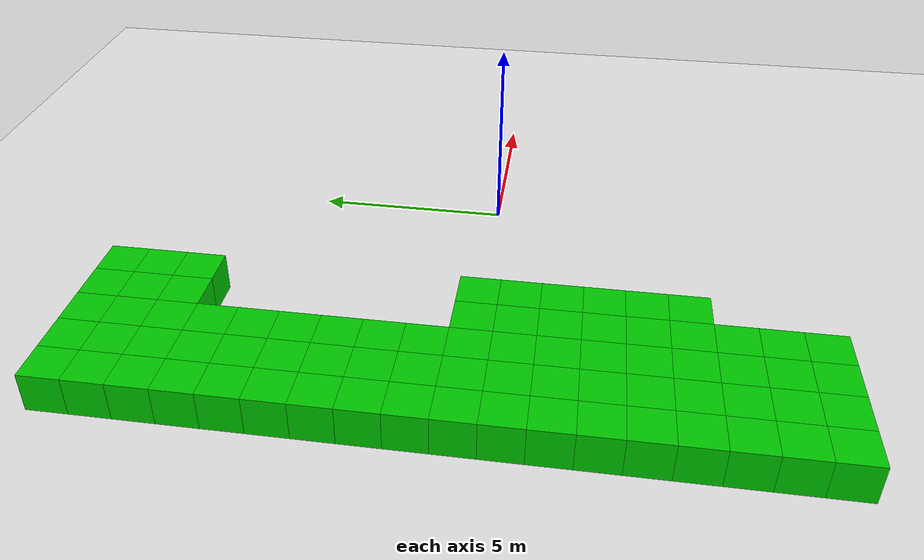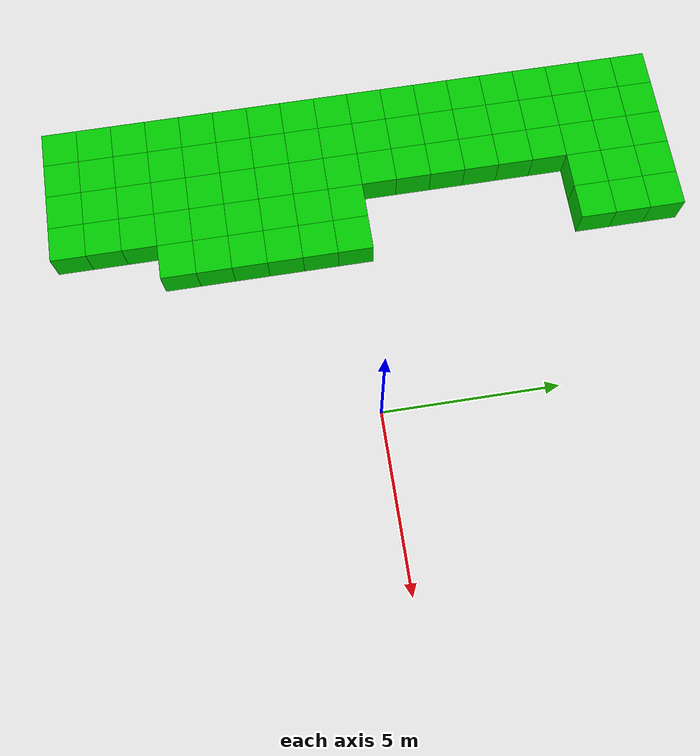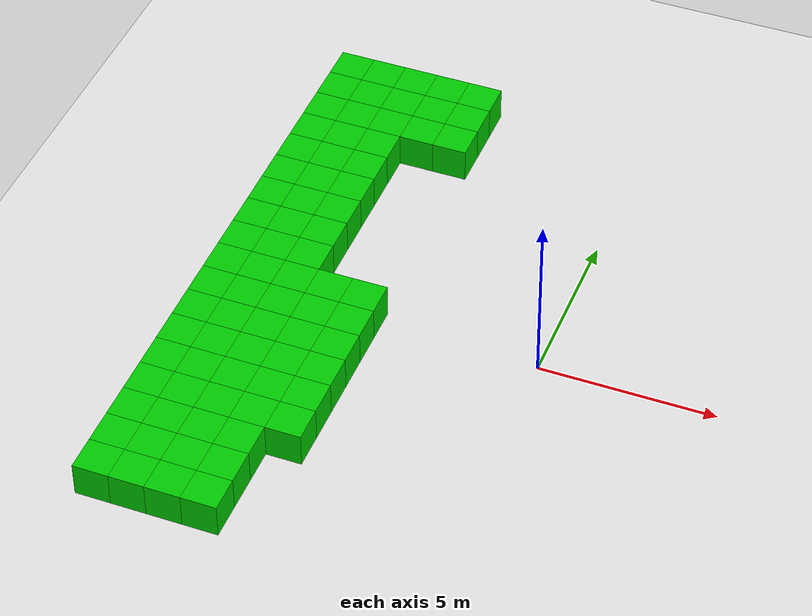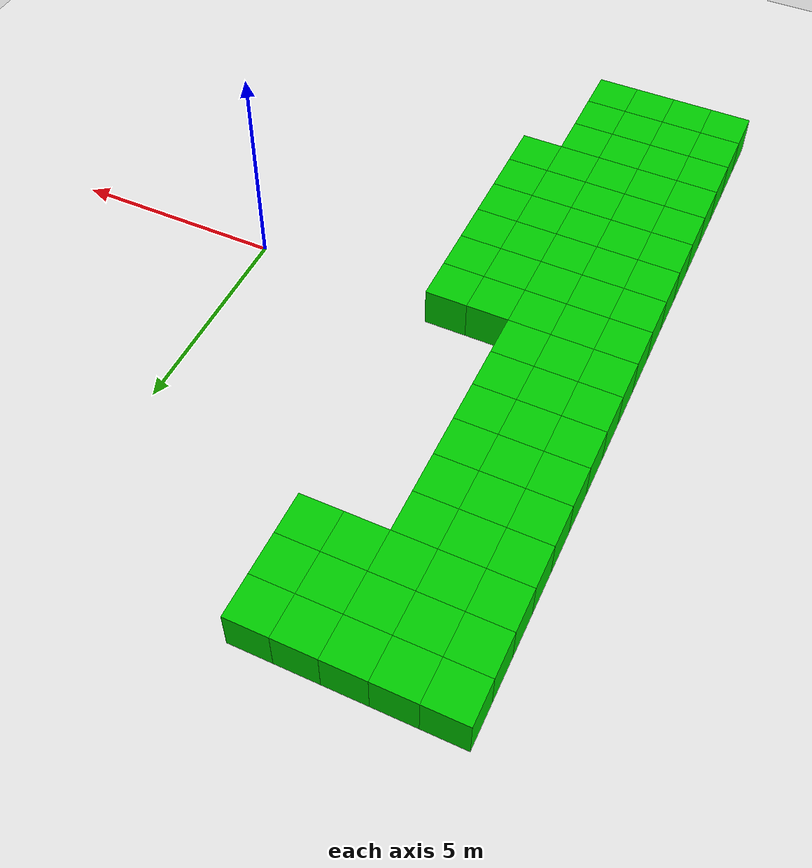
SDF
<sdf version="1.6">
 <world name="generated_maze">
  <model name="ground_plane">
   <static>true</static>
   <link name="link">
    <collision name="collision">
     <geometry><plane><normal>0 0 1</normal><size>100 100</size></plane></geometry>
    </collision>
    <visual name="visual">
     <geometry><plane><normal>0 0 1</normal><size>100 100</size></plane></geometry>
     <material>
      <ambient>0.9 0.9 0.9 1</ambient>
      <diffuse>0.9 0.9 0.9 1</diffuse>
      <specular>0.3 0.3 0.3 1</specular>
     </material>
    </visual>
   </link>
  </model>
  <model name="wall_0_0">
   <static>true</static>
   <pose>-9 9 0.5 0 0 0</pose>
   <link name="link">
    <collision name="collision"><geometry><box><size>1 1 1</size></box></geometry></collision>
    <visual name="visual">
     <geometry><box><size>1 1 1</size></box></geometry>
     <material>
      <ambient>0.0 0.8 0.0 1</ambient>
      <diffuse>0.0 0.8 0.0 1</diffuse>
      <specular>0.1 0.1 0.1 1</specular>
     </material>
    </visual>
   </link>
  </model>
  <model name="wall_0_1">
   <static>true</static>
   <pose>-8 9 0.5 0 0 0</pose>
   <link name="link">
    <collision name="collision"><geometry><box><size>1 1 1</size></box></geometry></collision>
    <visual name="visual">
     <geometry><box><size>1 1 1</size></box></geometry>
     <material>
      <ambient>0.0 0.8 0.0 1</ambient>
      <diffuse>0.0 0.8 0.0 1</diffuse>
      <specular>0.1 0.1 0.1 1</specular>
     </material>
    </visual>
   </link>
  </model>
  <model name="wall_0_2">
   <static>true</static>
   <pose>-7 9 0.5 0 0 0</pose>
   <link name="link">
    <collision name="collision"><geometry><box><size>1 1 1</size></box></geometry></collision>
    <visual name="visual">
     <geometry><box><size>1 1 1</size></box></geometry>
     <material>
      <ambient>0.0 0.8 0.0 1</ambient>
      <diffuse>0.0 0.8 0.0 1</diffuse>
      <specular>0.1 0.1 0.1 1</specular>
     </material>
    </visual>
   </link>
  </model>
  <model name="wall_0_3">
   <static>true</static>
   <pose>-6 9 0.5 0 0 0</pose>
   <link name="link">
    <collision name="collision"><geometry><box><size>1 1 1</size></box></geometry></collision>
    <visual name="visual">
     <geometry><box><size>1 1 1</size></box></geometry>
     <material>
      <ambient>0.0 0.8 0.0 1</ambient>
      <diffuse>0.0 0.8 0.0 1</diffuse>
      <specular>0.1 0.1 0.1 1</specular>
     </material>
    </visual>
   </link>
  </model>
  <model name="wall_0_4">
   <static>true</static>
   <pose>-5 9 0.5 0 0 0</pose>
   <link name="link">
    <collision name="collision"><geometry><box><size>1 1 1</size></box></geometry></collision>
    <visual name="visual">
     <geometry><box><size>1 1 1</size></box></geometry>
     <material>
      <ambient>0.0 0.8 0.0 1</ambient>
      <diffuse>0.0 0.8 0.0 1</diffuse>
      <specular>0.1 0.1 0.1 1</specular>
     </material>
    </visual>
   </link>
  </model>
  <model name="wall_1_0">
   <static>true</static>
   <pose>-9 8 0.5 0 0 0</pose>
   <link name="link">
    <collision name="collision"><geometry><box><size>1 1 1</size></box></geometry></collision>
    <visual name="visual">
     <geometry><box><size>1 1 1</size></box></geometry>
     <material>
      <ambient>0.0 0.8 0.0 1</ambient>
      <diffuse>0.0 0.8 0.0 1</diffuse>
      <specular>0.1 0.1 0.1 1</specular>
     </material>
    </visual>
   </link>
  </model>
  <model name="wall_1_1">
   <static>true</static>
   <pose>-8 8 0.5 0 0 0</pose>
   <link name="link">
    <collision name="collision"><geometry><box><size>1 1 1</size></box></geometry></collision>
    <visual name="visual">
     <geometry><box><size>1 1 1</size></box></geometry>
     <material>
      <ambient>0.0 0.8 0.0 1</ambient>
      <diffuse>0.0 0.8 0.0 1</diffuse>
      <specular>0.1 0.1 0.1 1</specular>
     </material>
    </visual>
   </link>
  </model>
  <model name="wall_1_2">
   <static>true</static>
   <pose>-7 8 0.5 0 0 0</pose>
   <link name="link">
    <collision name="collision"><geometry><box><size>1 1 1</size></box></geometry></collision>
    <visual name="visual">
     <geometry><box><size>1 1 1</size></box></geometry>
     <material>
      <ambient>0.0 0.8 0.0 1</ambient>
      <diffuse>0.0 0.8 0.0 1</diffuse>
      <specular>0.1 0.1 0.1 1</specular>
     </material>
    </visual>
   </link>
  </model>
  <model name="wall_1_3">
   <static>true</static>
   <pose>-6 8 0.5 0 0 0</pose>
   <link name="link">
    <collision name="collision"><geometry><box><size>1 1 1</size></box></geometry></collision>
    <visual name="visual">
     <geometry><box><size>1 1 1</size></box></geometry>
     <material>
      <ambient>0.0 0.8 0.0 1</ambient>
      <diffuse>0.0 0.8 0.0 1</diffuse>
      <specular>0.1 0.1 0.1 1</specular>
     </material>
    </visual>
   </link>
  </model>
  <model name="wall_1_4">
   <static>true</static>
   <pose>-5 8 0.5 0 0 0</pose>
   <link name="link">
    <collision name="collision"><geometry><box><size>1 1 1</size></box></geometry></collision>
    <visual name="visual">
     <geometry><box><size>1 1 1</size></box></geometry>
     <material>
      <ambient>0.0 0.8 0.0 1</ambient>
      <diffuse>0.0 0.8 0.0 1</diffuse>
      <specular>0.1 0.1 0.1 1</specular>
     </material>
    </visual>
   </link>
  </model>
  <model name="wall_2_0">
   <static>true</static>
   <pose>-9 7 0.5 0 0 0</pose>
   <link name="link">
    <collision name="collision"><geometry><box><size>1 1 1</size></box></geometry></collision>
    <visual name="visual">
     <geometry><box><size>1 1 1</size></box></geometry>
     <material>
      <ambient>0.0 0.8 0.0 1</ambient>
      <diffuse>0.0 0.8 0.0 1</diffuse>
      <specular>0.1 0.1 0.1 1</specular>
     </material>
    </visual>
   </link>
  </model>
  <model name="wall_2_1">
   <static>true</static>
   <pose>-8 7 0.5 0 0 0</pose>
   <link name="link">
    <collision name="collision"><geometry><box><size>1 1 1</size></box></geometry></collision>
    <visual name="visual">
     <geometry><box><size>1 1 1</size></box></geometry>
     <material>
      <ambient>0.0 0.8 0.0 1</ambient>
      <diffuse>0.0 0.8 0.0 1</diffuse>
      <specular>0.1 0.1 0.1 1</specular>
     </material>
    </visual>
   </link>
  </model>
  <model name="wall_2_2">
   <static>true</static>
   <pose>-7 7 0.5 0 0 0</pose>
   <link name="link">
    <collision name="collision"><geometry><box><size>1 1 1</size></box></geometry></collision>
    <visual name="visual">
     <geometry><box><size>1 1 1</size></box></geometry>
     <material>
      <ambient>0.0 0.8 0.0 1</ambient>
      <diffuse>0.0 0.8 0.0 1</diffuse>
      <specular>0.1 0.1 0.1 1</specular>
     </material>
    </visual>
   </link>
  </model>
  <model name="wall_2_3">
   <static>true</static>
   <pose>-6 7 0.5 0 0 0</pose>
   <link name="link">
    <collision name="collision"><geometry><box><size>1 1 1</size></box></geometry></collision>
    <visual name="visual">
     <geometry><box><size>1 1 1</size></box></geometry>
     <material>
      <ambient>0.0 0.8 0.0 1</ambient>
      <diffuse>0.0 0.8 0.0 1</diffuse>
      <specular>0.1 0.1 0.1 1</specular>
     </material>
    </visual>
   </link>
  </model>
  <model name="wall_2_4">
   <static>true</static>
   <pose>-5 7 0.5 0 0 0</pose>
   <link name="link">
    <collision name="collision"><geometry><box><size>1 1 1</size></box></geometry></collision>
    <visual name="visual">
     <geometry><box><size>1 1 1</size></box></geometry>
     <material>
      <ambient>0.0 0.8 0.0 1</ambient>
      <diffuse>0.0 0.8 0.0 1</diffuse>
      <specular>0.1 0.1 0.1 1</specular>
     </material>
    </visual>
   </link>
  </model>
  <model name="wall_3_0">
   <static>true</static>
   <pose>-9 6 0.5 0 0 0</pose>
   <link name="link">
    <collision name="collision"><geometry><box><size>1 1 1</size></box></geometry></collision>
    <visual name="visual">
     <geometry><box><size>1 1 1</size></box></geometry>
     <material>
      <ambient>0.0 0.8 0.0 1</ambient>
      <diffuse>0.0 0.8 0.0 1</diffuse>
      <specular>0.1 0.1 0.1 1</specular>
     </material>
    </visual>
   </link>
  </model>
  <model name="wall_3_1">
   <static>true</static>
   <pose>-8 6 0.5 0 0 0</pose>
   <link name="link">
    <collision name="collision"><geometry><box><size>1 1 1</size></box></geometry></collision>
    <visual name="visual">
     <geometry><box><size>1 1 1</size></box></geometry>
     <material>
      <ambient>0.0 0.8 0.0 1</ambient>
      <diffuse>0.0 0.8 0.0 1</diffuse>
      <specular>0.1 0.1 0.1 1</specular>
     </material>
    </visual>
   </link>
  </model>
  <model name="wall_3_2">
   <static>true</static>
   <pose>-7 6 0.5 0 0 0</pose>
   <link name="link">
    <collision name="collision"><geometry><box><size>1 1 1</size></box></geometry></collision>
    <visual name="visual">
     <geometry><box><size>1 1 1</size></box></geometry>
     <material>
      <ambient>0.0 0.8 0.0 1</ambient>
      <diffuse>0.0 0.8 0.0 1</diffuse>
      <specular>0.1 0.1 0.1 1</specular>
     </material>
    </visual>
   </link>
  </model>
  <model name="wall_4_0">
   <static>true</static>
   <pose>-9 5 0.5 0 0 0</pose>
   <link name="link">
    <collision name="collision"><geometry><box><size>1 1 1</size></box></geometry></collision>
    <visual name="visual">
     <geometry><box><size>1 1 1</size></box></geometry>
     <material>
      <ambient>0.0 0.8 0.0 1</ambient>
      <diffuse>0.0 0.8 0.0 1</diffuse>
      <specular>0.1 0.1 0.1 1</specular>
     </material>
    </visual>
   </link>
  </model>
  <model name="wall_4_1">
   <static>true</static>
   <pose>-8 5 0.5 0 0 0</pose>
   <link name="link">
    <collision name="collision"><geometry><box><size>1 1 1</size></box></geometry></collision>
    <visual name="visual">
     <geometry><box><size>1 1 1</size></box></geometry>
     <material>
      <ambient>0.0 0.8 0.0 1</ambient>
      <diffuse>0.0 0.8 0.0 1</diffuse>
      <specular>0.1 0.1 0.1 1</specular>
     </material>
    </visual>
   </link>
  </model>
  <model name="wall_4_2">
   <static>true</static>
   <pose>-7 5 0.5 0 0 0</pose>
   <link name="link">
    <collision name="collision"><geometry><box><size>1 1 1</size></box></geometry></collision>
    <visual name="visual">
     <geometry><box><size>1 1 1</size></box></geometry>
     <material>
      <ambient>0.0 0.8 0.0 1</ambient>
      <diffuse>0.0 0.8 0.0 1</diffuse>
      <specular>0.1 0.1 0.1 1</specular>
     </material>
    </visual>
   </link>
  </model>
  <model name="wall_5_0">
   <static>true</static>
   <pose>-9 4 0.5 0 0 0</pose>
   <link name="link">
    <collision name="collision"><geometry><box><size>1 1 1</size></box></geometry></collision>
    <visual name="visual">
     <geometry><box><size>1 1 1</size></box></geometry>
     <material>
      <ambient>0.0 0.8 0.0 1</ambient>
      <diffuse>0.0 0.8 0.0 1</diffuse>
      <specular>0.1 0.1 0.1 1</specular>
     </material>
    </visual>
   </link>
  </model>
  <model name="wall_5_1">
   <static>true</static>
   <pose>-8 4 0.5 0 0 0</pose>
   <link name="link">
    <collision name="collision"><geometry><box><size>1 1 1</size></box></geometry></collision>
    <visual name="visual">
     <geometry><box><size>1 1 1</size></box></geometry>
     <material>
      <ambient>0.0 0.8 0.0 1</ambient>
      <diffuse>0.0 0.8 0.0 1</diffuse>
      <specular>0.1 0.1 0.1 1</specular>
     </material>
    </visual>
   </link>
  </model>
  <model name="wall_5_2">
   <static>true</static>
   <pose>-7 4 0.5 0 0 0</pose>
   <link name="link">
    <collision name="collision"><geometry><box><size>1 1 1</size></box></geometry></collision>
    <visual name="visual">
     <geometry><box><size>1 1 1</size></box></geometry>
     <material>
      <ambient>0.0 0.8 0.0 1</ambient>
      <diffuse>0.0 0.8 0.0 1</diffuse>
      <specular>0.1 0.1 0.1 1</specular>
     </material>
    </visual>
   </link>
  </model>
  <model name="wall_6_0">
   <static>true</static>
   <pose>-9 3 0.5 0 0 0</pose>
   <link name="link">
    <collision name="collision"><geometry><box><size>1 1 1</size></box></geometry></collision>
    <visual name="visual">
     <geometry><box><size>1 1 1</size></box></geometry>
     <material>
      <ambient>0.0 0.8 0.0 1</ambient>
      <diffuse>0.0 0.8 0.0 1</diffuse>
      <specular>0.1 0.1 0.1 1</specular>
     </material>
    </visual>
   </link>
  </model>
  <model name="wall_6_1">
   <static>true</static>
   <pose>-8 3 0.5 0 0 0</pose>
   <link name="link">
    <collision name="collision"><geometry><box><size>1 1 1</size></box></geometry></collision>
    <visual name="visual">
     <geometry><box><size>1 1 1</size></box></geometry>
     <material>
      <ambient>0.0 0.8 0.0 1</ambient>
      <diffuse>0.0 0.8 0.0 1</diffuse>
      <specular>0.1 0.1 0.1 1</specular>
     </material>
    </visual>
   </link>
  </model>
  <model name="wall_6_2">
   <static>true</static>
   <pose>-7 3 0.5 0 0 0</pose>
   <link name="link">
    <collision name="collision"><geometry><box><size>1 1 1</size></box></geometry></collision>
    <visual name="visual">
     <geometry><box><size>1 1 1</size></box></geometry>
     <material>
      <ambient>0.0 0.8 0.0 1</ambient>
      <diffuse>0.0 0.8 0.0 1</diffuse>
      <specular>0.1 0.1 0.1 1</specular>
     </material>
    </visual>
   </link>
  </model>
  <model name="wall_7_0">
   <static>true</static>
   <pose>-9 2 0.5 0 0 0</pose>
   <link name="link">
    <collision name="collision"><geometry><box><size>1 1 1</size></box></geometry></collision>
    <visual name="visual">
     <geometry><box><size>1 1 1</size></box></geometry>
     <material>
      <ambient>0.0 0.8 0.0 1</ambient>
      <diffuse>0.0 0.8 0.0 1</diffuse>
      <specular>0.1 0.1 0.1 1</specular>
     </material>
    </visual>
   </link>
  </model>
  <model name="wall_7_1">
   <static>true</static>
   <pose>-8 2 0.5 0 0 0</pose>
   <link name="link">
    <collision name="collision"><geometry><box><size>1 1 1</size></box></geometry></collision>
    <visual name="visual">
     <geometry><box><size>1 1 1</size></box></geometry>
     <material>
      <ambient>0.0 0.8 0.0 1</ambient>
      <diffuse>0.0 0.8 0.0 1</diffuse>
      <specular>0.1 0.1 0.1 1</specular>
     </material>
    </visual>
   </link>
  </model>
  <model name="wall_7_2">
   <static>true</static>
   <pose>-7 2 0.5 0 0 0</pose>
   <link name="link">
    <collision name="collision"><geometry><box><size>1 1 1</size></box></geometry></collision>
    <visual name="visual">
     <geometry><box><size>1 1 1</size></box></geometry>
     <material>
      <ambient>0.0 0.8 0.0 1</ambient>
      <diffuse>0.0 0.8 0.0 1</diffuse>
      <specular>0.1 0.1 0.1 1</specular>
     </material>
    </visual>
   </link>
  </model>
  <model name="wall_8_0">
   <static>true</static>
   <pose>-9 1 0.5 0 0 0</pose>
   <link name="link">
    <collision name="collision"><geometry><box><size>1 1 1</size></box></geometry></collision>
    <visual name="visual">
     <geometry><box><size>1 1 1</size></box></geometry>
     <material>
      <ambient>0.0 0.8 0.0 1</ambient>
      <diffuse>0.0 0.8 0.0 1</diffuse>
      <specular>0.1 0.1 0.1 1</specular>
     </material>
    </visual>
   </link>
  </model>
  <model name="wall_8_1">
   <static>true</static>
   <pose>-8 1 0.5 0 0 0</pose>
   <link name="link">
    <collision name="collision"><geometry><box><size>1 1 1</size></box></geometry></collision>
    <visual name="visual">
     <geometry><box><size>1 1 1</size></box></geometry>
     <material>
      <ambient>0.0 0.8 0.0 1</ambient>
      <diffuse>0.0 0.8 0.0 1</diffuse>
      <specular>0.1 0.1 0.1 1</specular>
     </material>
    </visual>
   </link>
  </model>
  <model name="wall_8_2">
   <static>true</static>
   <pose>-7 1 0.5 0 0 0</pose>
   <link name="link">
    <collision name="collision"><geometry><box><size>1 1 1</size></box></geometry></collision>
    <visual name="visual">
     <geometry><box><size>1 1 1</size></box></geometry>
     <material>
      <ambient>0.0 0.8 0.0 1</ambient>
      <diffuse>0.0 0.8 0.0 1</diffuse>
      <specular>0.1 0.1 0.1 1</specular>
     </material>
    </visual>
   </link>
  </model>
  <model name="wall_9_0">
   <static>true</static>
   <pose>-9 0 0.5 0 0 0</pose>
   <link name="link">
    <collision name="collision"><geometry><box><size>1 1 1</size></box></geometry></collision>
    <visual name="visual">
     <geometry><box><size>1 1 1</size></box></geometry>
     <material>
      <ambient>0.0 0.8 0.0 1</ambient>
      <diffuse>0.0 0.8 0.0 1</diffuse>
      <specular>0.1 0.1 0.1 1</specular>
     </material>
    </visual>
   </link>
  </model>
  <model name="wall_9_1">
   <static>true</static>
   <pose>-8 0 0.5 0 0 0</pose>
   <link name="link">
    <collision name="collision"><geometry><box><size>1 1 1</size></box></geometry></collision>
    <visual name="visual">
     <geometry><box><size>1 1 1</size></box></geometry>
     <material>
      <ambient>0.0 0.8 0.0 1</ambient>
      <diffuse>0.0 0.8 0.0 1</diffuse>
      <specular>0.1 0.1 0.1 1</specular>
     </material>
    </visual>
   </link>
  </model>
  <model name="wall_9_2">
   <static>true</static>
   <pose>-7 0 0.5 0 0 0</pose>
   <link name="link">
    <collision name="collision"><geometry><box><size>1 1 1</size></box></geometry></collision>
    <visual name="visual">
     <geometry><box><size>1 1 1</size></box></geometry>
     <material>
      <ambient>0.0 0.8 0.0 1</ambient>
      <diffuse>0.0 0.8 0.0 1</diffuse>
      <specular>0.1 0.1 0.1 1</specular>
     </material>
    </visual>
   </link>
  </model>
  <model name="wall_9_3">
   <static>true</static>
   <pose>-6 0 0.5 0 0 0</pose>
   <link name="link">
    <collision name="collision"><geometry><box><size>1 1 1</size></box></geometry></collision>
    <visual name="visual">
     <geometry><box><size>1 1 1</size></box></geometry>
     <material>
      <ambient>0.0 0.8 0.0 1</ambient>
      <diffuse>0.0 0.8 0.0 1</diffuse>
      <specular>0.1 0.1 0.1 1</specular>
     </material>
    </visual>
   </link>
  </model>
  <model name="wall_9_4">
   <static>true</static>
   <pose>-5 0 0.5 0 0 0</pose>
   <link name="link">
    <collision name="collision"><geometry><box><size>1 1 1</size></box></geometry></collision>
    <visual name="visual">
     <geometry><box><size>1 1 1</size></box></geometry>
     <material>
      <ambient>0.0 0.8 0.0 1</ambient>
      <diffuse>0.0 0.8 0.0 1</diffuse>
      <specular>0.1 0.1 0.1 1</specular>
     </material>
    </visual>
   </link>
  </model>
  <model name="wall_10_0">
   <static>true</static>
   <pose>-9 -1 0.5 0 0 0</pose>
   <link name="link">
    <collision name="collision"><geometry><box><size>1 1 1</size></box></geometry></collision>
    <visual name="visual">
     <geometry><box><size>1 1 1</size></box></geometry>
     <material>
      <ambient>0.0 0.8 0.0 1</ambient>
      <diffuse>0.0 0.8 0.0 1</diffuse>
      <specular>0.1 0.1 0.1 1</specular>
     </material>
    </visual>
   </link>
  </model>
  <model name="wall_10_1">
   <static>true</static>
   <pose>-8 -1 0.5 0 0 0</pose>
   <link name="link">
    <collision name="collision"><geometry><box><size>1 1 1</size></box></geometry></collision>
    <visual name="visual">
     <geometry><box><size>1 1 1</size></box></geometry>
     <material>
      <ambient>0.0 0.8 0.0 1</ambient>
      <diffuse>0.0 0.8 0.0 1</diffuse>
      <specular>0.1 0.1 0.1 1</specular>
     </material>
    </visual>
   </link>
  </model>
  <model name="wall_10_2">
   <static>true</static>
   <pose>-7 -1 0.5 0 0 0</pose>
   <link name="link">
    <collision name="collision"><geometry><box><size>1 1 1</size></box></geometry></collision>
    <visual name="visual">
     <geometry><box><size>1 1 1</size></box></geometry>
     <material>
      <ambient>0.0 0.8 0.0 1</ambient>
      <diffuse>0.0 0.8 0.0 1</diffuse>
      <specular>0.1 0.1 0.1 1</specular>
     </material>
    </visual>
   </link>
  </model>
  <model name="wall_10_3">
   <static>true</static>
   <pose>-6 -1 0.5 0 0 0</pose>
   <link name="link">
    <collision name="collision"><geometry><box><size>1 1 1</size></box></geometry></collision>
    <visual name="visual">
     <geometry><box><size>1 1 1</size></box></geometry>
     <material>
      <ambient>0.0 0.8 0.0 1</ambient>
      <diffuse>0.0 0.8 0.0 1</diffuse>
      <specular>0.1 0.1 0.1 1</specular>
     </material>
    </visual>
   </link>
  </model>
  <model name="wall_10_4">
   <static>true</static>
   <pose>-5 -1 0.5 0 0 0</pose>
   <link name="link">
    <collision name="collision"><geometry><box><size>1 1 1</size></box></geometry></collision>
    <visual name="visual">
     <geometry><box><size>1 1 1</size></box></geometry>
     <material>
      <ambient>0.0 0.8 0.0 1</ambient>
      <diffuse>0.0 0.8 0.0 1</diffuse>
      <specular>0.1 0.1 0.1 1</specular>
     </material>
    </visual>
   </link>
  </model>
  <model name="wall_11_0">
   <static>true</static>
   <pose>-9 -2 0.5 0 0 0</pose>
   <link name="link">
    <collision name="collision"><geometry><box><size>1 1 1</size></box></geometry></collision>
    <visual name="visual">
     <geometry><box><size>1 1 1</size></box></geometry>
     <material>
      <ambient>0.0 0.8 0.0 1</ambient>
      <diffuse>0.0 0.8 0.0 1</diffuse>
      <specular>0.1 0.1 0.1 1</specular>
     </material>
    </visual>
   </link>
  </model>
  <model name="wall_11_1">
   <static>true</static>
   <pose>-8 -2 0.5 0 0 0</pose>
   <link name="link">
    <collision name="collision"><geometry><box><size>1 1 1</size></box></geometry></collision>
    <visual name="visual">
     <geometry><box><size>1 1 1</size></box></geometry>
     <material>
      <ambient>0.0 0.8 0.0 1</ambient>
      <diffuse>0.0 0.8 0.0 1</diffuse>
      <specular>0.1 0.1 0.1 1</specular>
     </material>
    </visual>
   </link>
  </model>
  <model name="wall_11_2">
   <static>true</static>
   <pose>-7 -2 0.5 0 0 0</pose>
   <link name="link">
    <collision name="collision"><geometry><box><size>1 1 1</size></box></geometry></collision>
    <visual name="visual">
     <geometry><box><size>1 1 1</size></box></geometry>
     <material>
      <ambient>0.0 0.8 0.0 1</ambient>
      <diffuse>0.0 0.8 0.0 1</diffuse>
      <specular>0.1 0.1 0.1 1</specular>
     </material>
    </visual>
   </link>
  </model>
  <model name="wall_11_3">
   <static>true</static>
   <pose>-6 -2 0.5 0 0 0</pose>
   <link name="link">
    <collision name="collision"><geometry><box><size>1 1 1</size></box></geometry></collision>
    <visual name="visual">
     <geometry><box><size>1 1 1</size></box></geometry>
     <material>
      <ambient>0.0 0.8 0.0 1</ambient>
      <diffuse>0.0 0.8 0.0 1</diffuse>
      <specular>0.1 0.1 0.1 1</specular>
     </material>
    </visual>
   </link>
  </model>
  <model name="wall_11_4">
   <static>true</static>
   <pose>-5 -2 0.5 0 0 0</pose>
   <link name="link">
    <collision name="collision"><geometry><box><size>1 1 1</size></box></geometry></collision>
    <visual name="visual">
     <geometry><box><size>1 1 1</size></box></geometry>
     <material>
      <ambient>0.0 0.8 0.0 1</ambient>
      <diffuse>0.0 0.8 0.0 1</diffuse>
      <specular>0.1 0.1 0.1 1</specular>
     </material>
    </visual>
   </link>
  </model>
  <model name="wall_12_0">
   <static>true</static>
   <pose>-9 -3 0.5 0 0 0</pose>
   <link name="link">
    <collision name="collision"><geometry><box><size>1 1 1</size></box></geometry></collision>
    <visual name="visual">
     <geometry><box><size>1 1 1</size></box></geometry>
     <material>
      <ambient>0.0 0.8 0.0 1</ambient>
      <diffuse>0.0 0.8 0.0 1</diffuse>
      <specular>0.1 0.1 0.1 1</specular>
     </material>
    </visual>
   </link>
  </model>
  <model name="wall_12_1">
   <static>true</static>
   <pose>-8 -3 0.5 0 0 0</pose>
   <link name="link">
    <collision name="collision"><geometry><box><size>1 1 1</size></box></geometry></collision>
    <visual name="visual">
     <geometry><box><size>1 1 1</size></box></geometry>
     <material>
      <ambient>0.0 0.8 0.0 1</ambient>
      <diffuse>0.0 0.8 0.0 1</diffuse>
      <specular>0.1 0.1 0.1 1</specular>
     </material>
    </visual>
   </link>
  </model>
  <model name="wall_12_2">
   <static>true</static>
   <pose>-7 -3 0.5 0 0 0</pose>
   <link name="link">
    <collision name="collision"><geometry><box><size>1 1 1</size></box></geometry></collision>
    <visual name="visual">
     <geometry><box><size>1 1 1</size></box></geometry>
     <material>
      <ambient>0.0 0.8 0.0 1</ambient>
      <diffuse>0.0 0.8 0.0 1</diffuse>
      <specular>0.1 0.1 0.1 1</specular>
     </material>
    </visual>
   </link>
  </model>
  <model name="wall_12_3">
   <static>true</static>
   <pose>-6 -3 0.5 0 0 0</pose>
   <link name="link">
    <collision name="collision"><geometry><box><size>1 1 1</size></box></geometry></collision>
    <visual name="visual">
     <geometry><box><size>1 1 1</size></box></geometry>
     <material>
      <ambient>0.0 0.8 0.0 1</ambient>
      <diffuse>0.0 0.8 0.0 1</diffuse>
      <specular>0.1 0.1 0.1 1</specular>
     </material>
    </visual>
   </link>
  </model>
  <model name="wall_12_4">
   <static>true</static>
   <pose>-5 -3 0.5 0 0 0</pose>
   <link name="link">
    <collision name="collision"><geometry><box><size>1 1 1</size></box></geometry></collision>
    <visual name="visual">
     <geometry><box><size>1 1 1</size></box></geometry>
     <material>
      <ambient>0.0 0.8 0.0 1</ambient>
      <diffuse>0.0 0.8 0.0 1</diffuse>
      <specular>0.1 0.1 0.1 1</specular>
     </material>
    </visual>
   </link>
  </model>
  <model name="wall_13_0">
   <static>true</static>
   <pose>-9 -4 0.5 0 0 0</pose>
   <link name="link">
    <collision name="collision"><geometry><box><size>1 1 1</size></box></geometry></collision>
    <visual name="visual">
     <geometry><box><size>1 1 1</size></box></geometry>
     <material>
      <ambient>0.0 0.8 0.0 1</ambient>
      <diffuse>0.0 0.8 0.0 1</diffuse>
      <specular>0.1 0.1 0.1 1</specular>
     </material>
    </visual>
   </link>
  </model>
  <model name="wall_13_1">
   <static>true</static>
   <pose>-8 -4 0.5 0 0 0</pose>
   <link name="link">
    <collision name="collision"><geometry><box><size>1 1 1</size></box></geometry></collision>
    <visual name="visual">
     <geometry><box><size>1 1 1</size></box></geometry>
     <material>
      <ambient>0.0 0.8 0.0 1</ambient>
      <diffuse>0.0 0.8 0.0 1</diffuse>
      <specular>0.1 0.1 0.1 1</specular>
     </material>
    </visual>
   </link>
  </model>
  <model name="wall_13_2">
   <static>true</static>
   <pose>-7 -4 0.5 0 0 0</pose>
   <link name="link">
    <collision name="collision"><geometry><box><size>1 1 1</size></box></geometry></collision>
    <visual name="visual">
     <geometry><box><size>1 1 1</size></box></geometry>
     <material>
      <ambient>0.0 0.8 0.0 1</ambient>
      <diffuse>0.0 0.8 0.0 1</diffuse>
      <specular>0.1 0.1 0.1 1</specular>
     </material>
    </visual>
   </link>
  </model>
  <model name="wall_13_3">
   <static>true</static>
   <pose>-6 -4 0.5 0 0 0</pose>
   <link name="link">
    <collision name="collision"><geometry><box><size>1 1 1</size></box></geometry></collision>
    <visual name="visual">
     <geometry><box><size>1 1 1</size></box></geometry>
     <material>
      <ambient>0.0 0.8 0.0 1</ambient>
      <diffuse>0.0 0.8 0.0 1</diffuse>
      <specular>0.1 0.1 0.1 1</specular>
     </material>
    </visual>
   </link>
  </model>
  <model name="wall_13_4">
   <static>true</static>
   <pose>-5 -4 0.5 0 0 0</pose>
   <link name="link">
    <collision name="collision"><geometry><box><size>1 1 1</size></box></geometry></collision>
    <visual name="visual">
     <geometry><box><size>1 1 1</size></box></geometry>
     <material>
      <ambient>0.0 0.8 0.0 1</ambient>
      <diffuse>0.0 0.8 0.0 1</diffuse>
      <specular>0.1 0.1 0.1 1</specular>
     </material>
    </visual>
   </link>
  </model>
  <model name="wall_14_0">
   <static>true</static>
   <pose>-9 -5 0.5 0 0 0</pose>
   <link name="link">
    <collision name="collision"><geometry><box><size>1 1 1</size></box></geometry></collision>
    <visual name="visual">
     <geometry><box><size>1 1 1</size></box></geometry>
     <material>
      <ambient>0.0 0.8 0.0 1</ambient>
      <diffuse>0.0 0.8 0.0 1</diffuse>
      <specular>0.1 0.1 0.1 1</specular>
     </material>
    </visual>
   </link>
  </model>
  <model name="wall_14_1">
   <static>true</static>
   <pose>-8 -5 0.5 0 0 0</pose>
   <link name="link">
    <collision name="collision"><geometry><box><size>1 1 1</size></box></geometry></collision>
    <visual name="visual">
     <geometry><box><size>1 1 1</size></box></geometry>
     <material>
      <ambient>0.0 0.8 0.0 1</ambient>
      <diffuse>0.0 0.8 0.0 1</diffuse>
      <specular>0.1 0.1 0.1 1</specular>
     </material>
    </visual>
   </link>
  </model>
  <model name="wall_14_2">
   <static>true</static>
   <pose>-7 -5 0.5 0 0 0</pose>
   <link name="link">
    <collision name="collision"><geometry><box><size>1 1 1</size></box></geometry></collision>
    <visual name="visual">
     <geometry><box><size>1 1 1</size></box></geometry>
     <material>
      <ambient>0.0 0.8 0.0 1</ambient>
      <diffuse>0.0 0.8 0.0 1</diffuse>
      <specular>0.1 0.1 0.1 1</specular>
     </material>
    </visual>
   </link>
  </model>
  <model name="wall_14_3">
   <static>true</static>
   <pose>-6 -5 0.5 0 0 0</pose>
   <link name="link">
    <collision name="collision"><geometry><box><size>1 1 1</size></box></geometry></collision>
    <visual name="visual">
     <geometry><box><size>1 1 1</size></box></geometry>
     <material>
      <ambient>0.0 0.8 0.0 1</ambient>
      <diffuse>0.0 0.8 0.0 1</diffuse>
      <specular>0.1 0.1 0.1 1</specular>
     </material>
    </visual>
   </link>
  </model>
  <model name="wall_14_4">
   <static>true</static>
   <pose>-5 -5 0.5 0 0 0</pose>
   <link name="link">
    <collision name="collision"><geometry><box><size>1 1 1</size></box></geometry></collision>
    <visual name="visual">
     <geometry><box><size>1 1 1</size></box></geometry>
     <material>
      <ambient>0.0 0.8 0.0 1</ambient>
      <diffuse>0.0 0.8 0.0 1</diffuse>
      <specular>0.1 0.1 0.1 1</specular>
     </material>
    </visual>
   </link>
  </model>
  <model name="wall_15_0">
   <static>true</static>
   <pose>-9 -6 0.5 0 0 0</pose>
   <link name="link">
    <collision name="collision"><geometry><box><size>1 1 1</size></box></geometry></collision>
    <visual name="visual">
     <geometry><box><size>1 1 1</size></box></geometry>
     <material>
      <ambient>0.0 0.8 0.0 1</ambient>
      <diffuse>0.0 0.8 0.0 1</diffuse>
      <specular>0.1 0.1 0.1 1</specular>
     </material>
    </visual>
   </link>
  </model>
  <model name="wall_15_1">
   <static>true</static>
   <pose>-8 -6 0.5 0 0 0</pose>
   <link name="link">
    <collision name="collision"><geometry><box><size>1 1 1</size></box></geometry></collision>
    <visual name="visual">
     <geometry><box><size>1 1 1</size></box></geometry>
     <material>
      <ambient>0.0 0.8 0.0 1</ambient>
      <diffuse>0.0 0.8 0.0 1</diffuse>
      <specular>0.1 0.1 0.1 1</specular>
     </material>
    </visual>
   </link>
  </model>
  <model name="wall_15_2">
   <static>true</static>
   <pose>-7 -6 0.5 0 0 0</pose>
   <link name="link">
    <collision name="collision"><geometry><box><size>1 1 1</size></box></geometry></collision>
    <visual name="visual">
     <geometry><box><size>1 1 1</size></box></geometry>
     <material>
      <ambient>0.0 0.8 0.0 1</ambient>
      <diffuse>0.0 0.8 0.0 1</diffuse>
      <specular>0.1 0.1 0.1 1</specular>
     </material>
    </visual>
   </link>
  </model>
  <model name="wall_15_3">
   <static>true</static>
   <pose>-6 -6 0.5 0 0 0</pose>
   <link name="link">
    <collision name="collision"><geometry><box><size>1 1 1</size></box></geometry></collision>
    <visual name="visual">
     <geometry><box><size>1 1 1</size></box></geometry>
     <material>
      <ambient>0.0 0.8 0.0 1</ambient>
      <diffuse>0.0 0.8 0.0 1</diffuse>
      <specular>0.1 0.1 0.1 1</specular>
     </material>
    </visual>
   </link>
  </model>
  <model name="wall_16_0">
   <static>true</static>
   <pose>-9 -7 0.5 0 0 0</pose>
   <link name="link">
    <collision name="collision"><geometry><box><size>1 1 1</size></box></geometry></collision>
    <visual name="visual">
     <geometry><box><size>1 1 1</size></box></geometry>
     <material>
      <ambient>0.0 0.8 0.0 1</ambient>
      <diffuse>0.0 0.8 0.0 1</diffuse>
      <specular>0.1 0.1 0.1 1</specular>
     </material>
    </visual>
   </link>
  </model>
  <model name="wall_16_1">
   <static>true</static>
   <pose>-8 -7 0.5 0 0 0</pose>
   <link name="link">
    <collision name="collision"><geometry><box><size>1 1 1</size></box></geometry></collision>
    <visual name="visual">
     <geometry><box><size>1 1 1</size></box></geometry>
     <material>
      <ambient>0.0 0.8 0.0 1</ambient>
      <diffuse>0.0 0.8 0.0 1</diffuse>
      <specular>0.1 0.1 0.1 1</specular>
     </material>
    </visual>
   </link>
  </model>
  <model name="wall_16_2">
   <static>true</static>
   <pose>-7 -7 0.5 0 0 0</pose>
   <link name="link">
    <collision name="collision"><geometry><box><size>1 1 1</size></box></geometry></collision>
    <visual name="visual">
     <geometry><box><size>1 1 1</size></box></geometry>
     <material>
      <ambient>0.0 0.8 0.0 1</ambient>
      <diffuse>0.0 0.8 0.0 1</diffuse>
      <specular>0.1 0.1 0.1 1</specular>
     </material>
    </visual>
   </link>
  </model>
  <model name="wall_16_3">
   <static>true</static>
   <pose>-6 -7 0.5 0 0 0</pose>
   <link name="link">
    <collision name="collision"><geometry><box><size>1 1 1</size></box></geometry></collision>
    <visual name="visual">
     <geometry><box><size>1 1 1</size></box></geometry>
     <material>
      <ambient>0.0 0.8 0.0 1</ambient>
      <diffuse>0.0 0.8 0.0 1</diffuse>
      <specular>0.1 0.1 0.1 1</specular>
     </material>
    </visual>
   </link>
  </model>
  <model name="wall_17_0">
   <static>true</static>
   <pose>-9 -8 0.5 0 0 0</pose>
   <link name="link">
    <collision name="collision"><geometry><box><size>1 1 1</size></box></geometry></collision>
    <visual name="visual">
     <geometry><box><size>1 1 1</size></box></geometry>
     <material>
      <ambient>0.0 0.8 0.0 1</ambient>
      <diffuse>0.0 0.8 0.0 1</diffuse>
      <specular>0.1 0.1 0.1 1</specular>
     </material>
    </visual>
   </link>
  </model>
  <model name="wall_17_1">
   <static>true</static>
   <pose>-8 -8 0.5 0 0 0</pose>
   <link name="link">
    <collision name="collision"><geometry><box><size>1 1 1</size></box></geometry></collision>
    <visual name="visual">
     <geometry><box><size>1 1 1</size></box></geometry>
     <material>
      <ambient>0.0 0.8 0.0 1</ambient>
      <diffuse>0.0 0.8 0.0 1</diffuse>
      <specular>0.1 0.1 0.1 1</specular>
     </material>
    </visual>
   </link>
  </model>
  <model name="wall_17_2">
   <static>true</static>
   <pose>-7 -8 0.5 0 0 0</pose>
   <link name="link">
    <collision name="collision"><geometry><box><size>1 1 1</size></box></geometry></collision>
    <visual name="visual">
     <geometry><box><size>1 1 1</size></box></geometry>
     <material>
      <ambient>0.0 0.8 0.0 1</ambient>
      <diffuse>0.0 0.8 0.0 1</diffuse>
      <specular>0.1 0.1 0.1 1</specular>
     </material>
    </visual>
   </link>
  </model>
  <model name="wall_17_3">
   <static>true</static>
   <pose>-6 -8 0.5 0 0 0</pose>
   <link name="link">
    <collision name="collision"><geometry><box><size>1 1 1</size></box></geometry></collision>
    <visual name="visual">
     <geometry><box><size>1 1 1</size></box></geometry>
     <material>
      <ambient>0.0 0.8 0.0 1</ambient>
      <diffuse>0.0 0.8 0.0 1</diffuse>
      <specular>0.1 0.1 0.1 1</specular>
     </material>
    </visual>
   </link>
  </model>
 </world>
</sdf>
